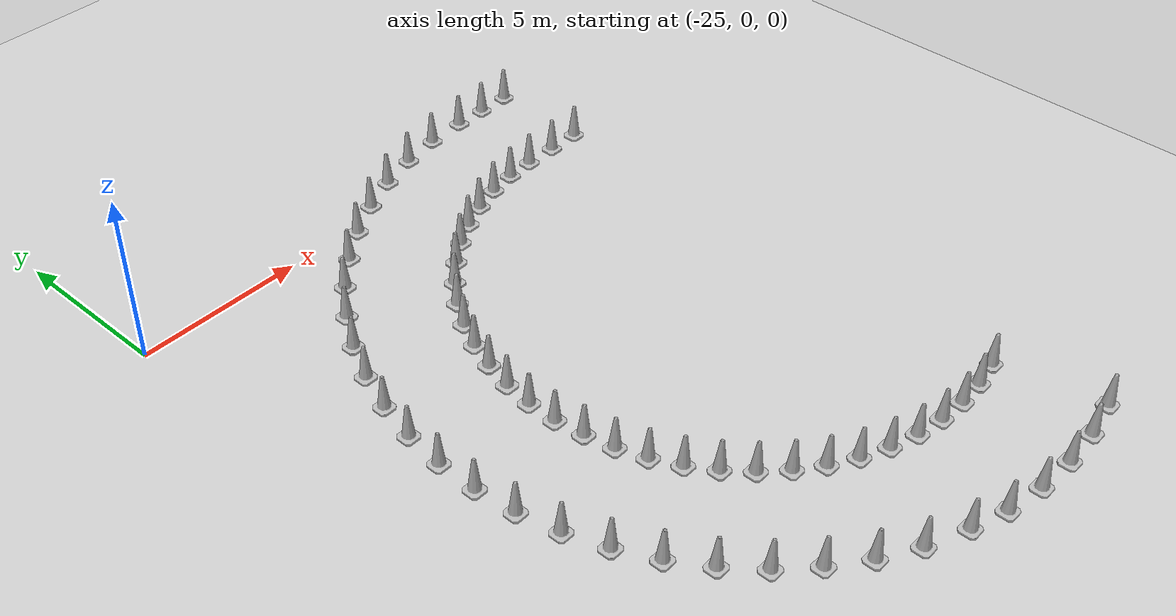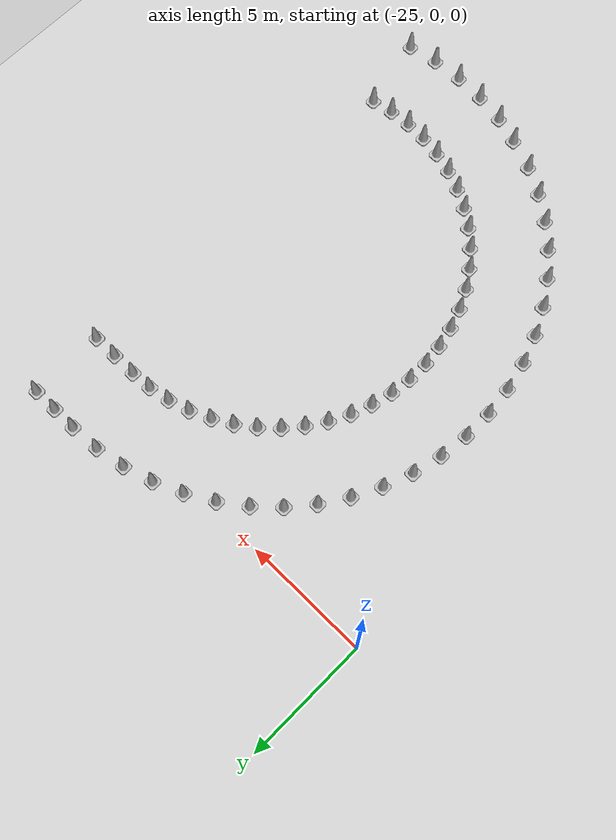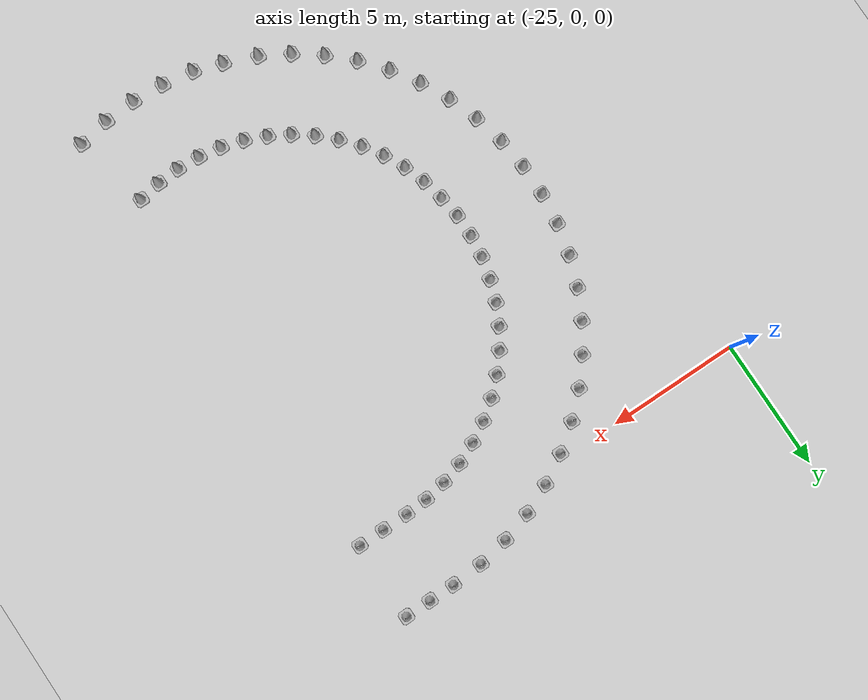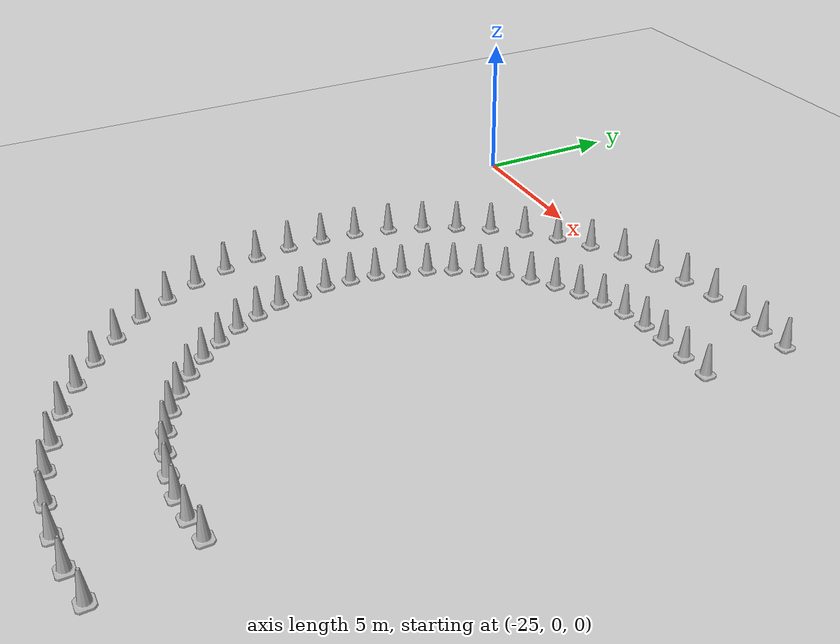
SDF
<sdf version="1.7">
 <world name="default">
  <model name="ground_plane">
   <static>1</static>
   <link name="link">
    <collision name="collision">
     <geometry><plane><normal>0 0 1</normal><size>100 100</size></plane></geometry>
     <surface><friction><ode><mu>100</mu><mu2>50</mu2></ode></friction></surface>
    </collision>
    <visual name="visual">
     <cast_shadows>0</cast_shadows>
     <geometry><plane><normal>0 0 1</normal><size>100 100</size></plane></geometry>
     <material>
      <script><uri>file://media/materials/scripts/gazebo.material</uri><name>Gazebo/Grey</name></script>
     </material>
    </visual>
   </link>
  </model>
  <model name="Construction Cone_clone_40">
   <link name="link">
    <collision name="collision">
     <geometry>
      <mesh><scale>10 10 10</scale><uri>model://construction_cone/meshes/construction_cone.dae</uri></mesh>
     </geometry>
    </collision>
    <visual name="visual">
     <geometry>
      <mesh><scale>10 10 10</scale><uri>model://construction_cone/meshes/construction_cone.dae</uri></mesh>
     </geometry>
    </visual>
    <inertial>
     <inertia><ixx>1</ixx><ixy>0</ixy><ixz>0</ixz><iyy>1</iyy><iyz>0</iyz><izz>1</izz></inertia>
     <mass>1</mass>
    </inertial>
   </link>
   <pose>-14.57 -1.95 -0 0 -1e-06 0</pose>
  </model>
  <model name="Construction Cone_clone_42">
   <link name="link">
    <collision name="collision">
     <geometry>
      <mesh><scale>10 10 10</scale><uri>model://construction_cone/meshes/construction_cone.dae</uri></mesh>
     </geometry>
    </collision>
    <visual name="visual">
     <geometry>
      <mesh><scale>10 10 10</scale><uri>model://construction_cone/meshes/construction_cone.dae</uri></mesh>
     </geometry>
    </visual>
    <inertial>
     <inertia><ixx>1</ixx><ixy>0</ixy><ixz>0</ixz><iyy>1</iyy><iyz>0</iyz><izz>1</izz></inertia>
     <mass>1</mass>
    </inertial>
   </link>
   <pose>-17.46 -3.85 -0 -0 -0 -0</pose>
  </model>
  <model name="Construction Cone_clone_43">
   <link name="link">
    <collision name="collision">
     <geometry>
      <mesh><scale>10 10 10</scale><uri>model://construction_cone/meshes/construction_cone.dae</uri></mesh>
     </geometry>
    </collision>
    <visual name="visual">
     <geometry>
      <mesh><scale>10 10 10</scale><uri>model://construction_cone/meshes/construction_cone.dae</uri></mesh>
     </geometry>
    </visual>
    <inertial>
     <inertia><ixx>1</ixx><ixy>0</ixy><ixz>0</ixz><iyy>1</iyy><iyz>0</iyz><izz>1</izz></inertia>
     <mass>1</mass>
    </inertial>
   </link>
   <pose>-16.12 -2.73 -0 0 -1e-06 0</pose>
  </model>
  <model name="Construction Cone_clone_44">
   <link name="link">
    <collision name="collision">
     <geometry>
      <mesh><scale>10 10 10</scale><uri>model://construction_cone/meshes/construction_cone.dae</uri></mesh>
     </geometry>
    </collision>
    <visual name="visual">
     <geometry>
      <mesh><scale>10 10 10</scale><uri>model://construction_cone/meshes/construction_cone.dae</uri></mesh>
     </geometry>
    </visual>
    <inertial>
     <inertia><ixx>1</ixx><ixy>0</ixy><ixz>0</ixz><iyy>1</iyy><iyz>0</iyz><izz>1</izz></inertia>
     <mass>1</mass>
    </inertial>
   </link>
   <pose>-18.5 -5.25 -0 -0 -0 -0</pose>
  </model>
  <model name="Construction Cone_clone_45">
   <link name="link">
    <collision name="collision">
     <geometry>
      <mesh><scale>10 10 10</scale><uri>model://construction_cone/meshes/construction_cone.dae</uri></mesh>
     </geometry>
    </collision>
    <visual name="visual">
     <geometry>
      <mesh><scale>10 10 10</scale><uri>model://construction_cone/meshes/construction_cone.dae</uri></mesh>
     </geometry>
    </visual>
    <inertial>
     <inertia><ixx>1</ixx><ixy>0</ixy><ixz>0</ixz><iyy>1</iyy><iyz>0</iyz><izz>1</izz></inertia>
     <mass>1</mass>
    </inertial>
   </link>
   <pose>-18.02 -4.52 -0 -0 -0 -0</pose>
  </model>
  <model name="Construction Cone_clone_46">
   <link name="link">
    <collision name="collision">
     <geometry>
      <mesh><scale>10 10 10</scale><uri>model://construction_cone/meshes/construction_cone.dae</uri></mesh>
     </geometry>
    </collision>
    <visual name="visual">
     <geometry>
      <mesh><scale>10 10 10</scale><uri>model://construction_cone/meshes/construction_cone.dae</uri></mesh>
     </geometry>
    </visual>
    <inertial>
     <inertia><ixx>1</ixx><ixy>0</ixy><ixz>0</ixz><iyy>1</iyy><iyz>0</iyz><izz>1</izz></inertia>
     <mass>1</mass>
    </inertial>
   </link>
   <pose>-15.37 -2.3 -0 -0 -0 -0</pose>
  </model>
  <model name="Construction Cone_clone_47">
   <link name="link">
    <collision name="collision">
     <geometry>
      <mesh><scale>10 10 10</scale><uri>model://construction_cone/meshes/construction_cone.dae</uri></mesh>
     </geometry>
    </collision>
    <visual name="visual">
     <geometry>
      <mesh><scale>10 10 10</scale><uri>model://construction_cone/meshes/construction_cone.dae</uri></mesh>
     </geometry>
    </visual>
    <inertial>
     <inertia><ixx>1</ixx><ixy>0</ixy><ixz>0</ixz><iyy>1</iyy><iyz>0</iyz><izz>1</izz></inertia>
     <mass>1</mass>
    </inertial>
   </link>
   <pose>-13.73 -1.7 -0 -0 -0 -0</pose>
  </model>
  <model name="Construction Cone_clone_48">
   <link name="link">
    <collision name="collision">
     <geometry>
      <mesh><scale>10 10 10</scale><uri>model://construction_cone/meshes/construction_cone.dae</uri></mesh>
     </geometry>
    </collision>
    <visual name="visual">
     <geometry>
      <mesh><scale>10 10 10</scale><uri>model://construction_cone/meshes/construction_cone.dae</uri></mesh>
     </geometry>
    </visual>
    <inertial>
     <inertia><ixx>1</ixx><ixy>0</ixy><ixz>0</ixz><iyy>1</iyy><iyz>0</iyz><izz>1</izz></inertia>
     <mass>1</mass>
    </inertial>
   </link>
   <pose>-12.8698 -1.5497 -0 -0 -0 -0</pose>
  </model>
  <model name="Construction Cone_clone_49">
   <link name="link">
    <collision name="collision">
     <geometry>
      <mesh><scale>10 10 10</scale><uri>model://construction_cone/meshes/construction_cone.dae</uri></mesh>
     </geometry>
    </collision>
    <visual name="visual">
     <geometry>
      <mesh><scale>10 10 10</scale><uri>model://construction_cone/meshes/construction_cone.dae</uri></mesh>
     </geometry>
    </visual>
    <inertial>
     <inertia><ixx>1</ixx><ixy>0</ixy><ixz>0</ixz><iyy>1</iyy><iyz>0</iyz><izz>1</izz></inertia>
     <mass>1</mass>
    </inertial>
   </link>
   <pose>-12 -1.5 -9e-06 1e-06 -0 0</pose>
  </model>
  <model name="Construction Cone_clone_51">
   <link name="link">
    <collision name="collision">
     <geometry>
      <mesh><scale>10 10 10</scale><uri>model://construction_cone/meshes/construction_cone.dae</uri></mesh>
     </geometry>
    </collision>
    <visual name="visual">
     <geometry>
      <mesh><scale>10 10 10</scale><uri>model://construction_cone/meshes/construction_cone.dae</uri></mesh>
     </geometry>
    </visual>
    <inertial>
     <inertia><ixx>1</ixx><ixy>0</ixy><ixz>0</ixz><iyy>1</iyy><iyz>0</iyz><izz>1</izz></inertia>
     <mass>1</mass>
    </inertial>
   </link>
   <pose>-16.82 -3.25 -0 -0 -0 -0</pose>
  </model>
  <model name="Construction Cone_clone_52">
   <link name="link">
    <collision name="collision">
     <geometry>
      <mesh><scale>10 10 10</scale><uri>model://construction_cone/meshes/construction_cone.dae</uri></mesh>
     </geometry>
    </collision>
    <visual name="visual">
     <geometry>
      <mesh><scale>10 10 10</scale><uri>model://construction_cone/meshes/construction_cone.dae</uri></mesh>
     </geometry>
    </visual>
    <inertial>
     <inertia><ixx>1</ixx><ixy>0</ixy><ixz>0</ixz><iyy>1</iyy><iyz>0</iyz><izz>1</izz></inertia>
     <mass>1</mass>
    </inertial>
   </link>
   <pose>-19.18 -6.85 -0 -0 -0 -0</pose>
  </model>
  <model name="Construction Cone_clone_53">
   <link name="link">
    <collision name="collision">
     <geometry>
      <mesh><scale>10 10 10</scale><uri>model://construction_cone/meshes/construction_cone.dae</uri></mesh>
     </geometry>
    </collision>
    <visual name="visual">
     <geometry>
      <mesh><scale>10 10 10</scale><uri>model://construction_cone/meshes/construction_cone.dae</uri></mesh>
     </geometry>
    </visual>
    <inertial>
     <inertia><ixx>1</ixx><ixy>0</ixy><ixz>0</ixz><iyy>1</iyy><iyz>0</iyz><izz>1</izz></inertia>
     <mass>1</mass>
    </inertial>
   </link>
   <pose>-19.39 -7.7 -0 -0 -0 -0</pose>
  </model>
  <model name="Construction Cone_clone_54">
   <link name="link">
    <collision name="collision">
     <geometry>
      <mesh><scale>10 10 10</scale><uri>model://construction_cone/meshes/construction_cone.dae</uri></mesh>
     </geometry>
    </collision>
    <visual name="visual">
     <geometry>
      <mesh><scale>10 10 10</scale><uri>model://construction_cone/meshes/construction_cone.dae</uri></mesh>
     </geometry>
    </visual>
    <inertial>
     <inertia><ixx>1</ixx><ixy>0</ixy><ixz>0</ixz><iyy>1</iyy><iyz>0</iyz><izz>1</izz></inertia>
     <mass>1</mass>
    </inertial>
   </link>
   <pose>-18.89 -6.03 -0 -0 -0 -0</pose>
  </model>
  <model name="Construction Cone_clone_55">
   <link name="link">
    <collision name="collision">
     <geometry>
      <mesh><scale>10 10 10</scale><uri>model://construction_cone/meshes/construction_cone.dae</uri></mesh>
     </geometry>
    </collision>
    <visual name="visual">
     <geometry>
      <mesh><scale>10 10 10</scale><uri>model://construction_cone/meshes/construction_cone.dae</uri></mesh>
     </geometry>
    </visual>
    <inertial>
     <inertia><ixx>1</ixx><ixy>0</ixy><ixz>0</ixz><iyy>1</iyy><iyz>0</iyz><izz>1</izz></inertia>
     <mass>1</mass>
    </inertial>
   </link>
   <pose>-19.369 -10.3 -0 -0 -0 -0</pose>
  </model>
  <model name="Construction Cone_clone_56">
   <link name="link">
    <collision name="collision">
     <geometry>
      <mesh><scale>10 10 10</scale><uri>model://construction_cone/meshes/construction_cone.dae</uri></mesh>
     </geometry>
    </collision>
    <visual name="visual">
     <geometry>
      <mesh><scale>10 10 10</scale><uri>model://construction_cone/meshes/construction_cone.dae</uri></mesh>
     </geometry>
    </visual>
    <inertial>
     <inertia><ixx>1</ixx><ixy>0</ixy><ixz>0</ixz><iyy>1</iyy><iyz>0</iyz><izz>1</izz></inertia>
     <mass>1</mass>
    </inertial>
   </link>
   <pose>-18.5 -12.75 -0 -0 -0 -0</pose>
  </model>
  <model name="Construction Cone_clone_57">
   <link name="link">
    <collision name="collision">
     <geometry>
      <mesh><scale>10 10 10</scale><uri>model://construction_cone/meshes/construction_cone.dae</uri></mesh>
     </geometry>
    </collision>
    <visual name="visual">
     <geometry>
      <mesh><scale>10 10 10</scale><uri>model://construction_cone/meshes/construction_cone.dae</uri></mesh>
     </geometry>
    </visual>
    <inertial>
     <inertia><ixx>1</ixx><ixy>0</ixy><ixz>0</ixz><iyy>1</iyy><iyz>0</iyz><izz>1</izz></inertia>
     <mass>1</mass>
    </inertial>
   </link>
   <pose>-18.02 -13.48 -0 -0 -0 -0</pose>
  </model>
  <model name="Construction Cone_clone_58">
   <link name="link">
    <collision name="collision">
     <geometry>
      <mesh><scale>10 10 10</scale><uri>model://construction_cone/meshes/construction_cone.dae</uri></mesh>
     </geometry>
    </collision>
    <visual name="visual">
     <geometry>
      <mesh><scale>10 10 10</scale><uri>model://construction_cone/meshes/construction_cone.dae</uri></mesh>
     </geometry>
    </visual>
    <inertial>
     <inertia><ixx>1</ixx><ixy>0</ixy><ixz>0</ixz><iyy>1</iyy><iyz>0</iyz><izz>1</izz></inertia>
     <mass>1</mass>
    </inertial>
   </link>
   <pose>-15.37 -15.7 -0 -0 -0 -0</pose>
  </model>
  <model name="Construction Cone_clone_59">
   <link name="link">
    <collision name="collision">
     <geometry>
      <mesh><scale>10 10 10</scale><uri>model://construction_cone/meshes/construction_cone.dae</uri></mesh>
     </geometry>
    </collision>
    <visual name="visual">
     <geometry>
      <mesh><scale>10 10 10</scale><uri>model://construction_cone/meshes/construction_cone.dae</uri></mesh>
     </geometry>
    </visual>
    <inertial>
     <inertia><ixx>1</ixx><ixy>0</ixy><ixz>0</ixz><iyy>1</iyy><iyz>0</iyz><izz>1</izz></inertia>
     <mass>1</mass>
    </inertial>
   </link>
   <pose>-12 -16.5 -0 0 -1e-06 0</pose>
  </model>
  <model name="Construction Cone_clone_60">
   <link name="link">
    <collision name="collision">
     <geometry>
      <mesh><scale>10 10 10</scale><uri>model://construction_cone/meshes/construction_cone.dae</uri></mesh>
     </geometry>
    </collision>
    <visual name="visual">
     <geometry>
      <mesh><scale>10 10 10</scale><uri>model://construction_cone/meshes/construction_cone.dae</uri></mesh>
     </geometry>
    </visual>
    <inertial>
     <inertia><ixx>1</ixx><ixy>0</ixy><ixz>0</ixz><iyy>1</iyy><iyz>0</iyz><izz>1</izz></inertia>
     <mass>1</mass>
    </inertial>
   </link>
   <pose>-10.27 -16.3 -0 -0 -0 -0</pose>
  </model>
  <model name="Construction Cone_clone_64">
   <link name="link">
    <collision name="collision">
     <geometry>
      <mesh><scale>10 10 10</scale><uri>model://construction_cone/meshes/construction_cone.dae</uri></mesh>
     </geometry>
    </collision>
    <visual name="visual">
     <geometry>
      <mesh><scale>10 10 10</scale><uri>model://construction_cone/meshes/construction_cone.dae</uri></mesh>
     </geometry>
    </visual>
    <inertial>
     <inertia><ixx>1</ixx><ixy>0</ixy><ixz>0</ixz><iyy>1</iyy><iyz>0</iyz><izz>1</izz></inertia>
     <mass>1</mass>
    </inertial>
   </link>
   <pose>-19.49 -8.56 -0 -0 -0 -0</pose>
  </model>
  <model name="Construction Cone_clone_65">
   <link name="link">
    <collision name="collision">
     <geometry>
      <mesh><scale>10 10 10</scale><uri>model://construction_cone/meshes/construction_cone.dae</uri></mesh>
     </geometry>
    </collision>
    <visual name="visual">
     <geometry>
      <mesh><scale>10 10 10</scale><uri>model://construction_cone/meshes/construction_cone.dae</uri></mesh>
     </geometry>
    </visual>
    <inertial>
     <inertia><ixx>1</ixx><ixy>0</ixy><ixz>0</ixz><iyy>1</iyy><iyz>0</iyz><izz>1</izz></inertia>
     <mass>1</mass>
    </inertial>
   </link>
   <pose>-19.49 -9.44 -0 -0 -0 -0</pose>
  </model>
  <model name="Construction Cone_clone_66">
   <link name="link">
    <collision name="collision">
     <geometry>
      <mesh><scale>10 10 10</scale><uri>model://construction_cone/meshes/construction_cone.dae</uri></mesh>
     </geometry>
    </collision>
    <visual name="visual">
     <geometry>
      <mesh><scale>10 10 10</scale><uri>model://construction_cone/meshes/construction_cone.dae</uri></mesh>
     </geometry>
    </visual>
    <inertial>
     <inertia><ixx>1</ixx><ixy>0</ixy><ixz>0</ixz><iyy>1</iyy><iyz>0</iyz><izz>1</izz></inertia>
     <mass>1</mass>
    </inertial>
   </link>
   <pose>-11.13 -16.45 -0 -0 -0 -0</pose>
  </model>
  <model name="Construction Cone_clone_67">
   <link name="link">
    <collision name="collision">
     <geometry>
      <mesh><scale>10 10 10</scale><uri>model://construction_cone/meshes/construction_cone.dae</uri></mesh>
     </geometry>
    </collision>
    <visual name="visual">
     <geometry>
      <mesh><scale>10 10 10</scale><uri>model://construction_cone/meshes/construction_cone.dae</uri></mesh>
     </geometry>
    </visual>
    <inertial>
     <inertia><ixx>1</ixx><ixy>0</ixy><ixz>0</ixz><iyy>1</iyy><iyz>0</iyz><izz>1</izz></inertia>
     <mass>1</mass>
    </inertial>
   </link>
   <pose>-12.87 -16.45 -1e-05 0 -0 0</pose>
  </model>
  <model name="Construction Cone_clone_68">
   <link name="link">
    <collision name="collision">
     <geometry>
      <mesh><scale>10 10 10</scale><uri>model://construction_cone/meshes/construction_cone.dae</uri></mesh>
     </geometry>
    </collision>
    <visual name="visual">
     <geometry>
      <mesh><scale>10 10 10</scale><uri>model://construction_cone/meshes/construction_cone.dae</uri></mesh>
     </geometry>
    </visual>
    <inertial>
     <inertia><ixx>1</ixx><ixy>0</ixy><ixz>0</ixz><iyy>1</iyy><iyz>0</iyz><izz>1</izz></inertia>
     <mass>1</mass>
    </inertial>
   </link>
   <pose>-14.57 -16.05 -0 -0 -0 -0</pose>
  </model>
  <model name="Construction Cone_clone_69">
   <link name="link">
    <collision name="collision">
     <geometry>
      <mesh><scale>10 10 10</scale><uri>model://construction_cone/meshes/construction_cone.dae</uri></mesh>
     </geometry>
    </collision>
    <visual name="visual">
     <geometry>
      <mesh><scale>10 10 10</scale><uri>model://construction_cone/meshes/construction_cone.dae</uri></mesh>
     </geometry>
    </visual>
    <inertial>
     <inertia><ixx>1</ixx><ixy>0</ixy><ixz>0</ixz><iyy>1</iyy><iyz>0</iyz><izz>1</izz></inertia>
     <mass>1</mass>
    </inertial>
   </link>
   <pose>-16.82 -14.75 -0 -0 -0 -0</pose>
  </model>
  <model name="Construction Cone_clone_70">
   <link name="link">
    <collision name="collision">
     <geometry>
      <mesh><scale>10 10 10</scale><uri>model://construction_cone/meshes/construction_cone.dae</uri></mesh>
     </geometry>
    </collision>
    <visual name="visual">
     <geometry>
      <mesh><scale>10 10 10</scale><uri>model://construction_cone/meshes/construction_cone.dae</uri></mesh>
     </geometry>
    </visual>
    <inertial>
     <inertia><ixx>1</ixx><ixy>0</ixy><ixz>0</ixz><iyy>1</iyy><iyz>0</iyz><izz>1</izz></inertia>
     <mass>1</mass>
    </inertial>
   </link>
   <pose>-17.46 -14.15 -0 -0 -0 -0</pose>
  </model>
  <model name="Construction Cone_clone_71">
   <link name="link">
    <collision name="collision">
     <geometry>
      <mesh><scale>10 10 10</scale><uri>model://construction_cone/meshes/construction_cone.dae</uri></mesh>
     </geometry>
    </collision>
    <visual name="visual">
     <geometry>
      <mesh><scale>10 10 10</scale><uri>model://construction_cone/meshes/construction_cone.dae</uri></mesh>
     </geometry>
    </visual>
    <inertial>
     <inertia><ixx>1</ixx><ixy>0</ixy><ixz>0</ixz><iyy>1</iyy><iyz>0</iyz><izz>1</izz></inertia>
     <mass>1</mass>
    </inertial>
   </link>
   <pose>-18.89 -11.97 -0 -0 -0 -0</pose>
  </model>
  <model name="Construction Cone_clone_72">
   <link name="link">
    <collision name="collision">
     <geometry>
      <mesh><scale>10 10 10</scale><uri>model://construction_cone/meshes/construction_cone.dae</uri></mesh>
     </geometry>
    </collision>
    <visual name="visual">
     <geometry>
      <mesh><scale>10 10 10</scale><uri>model://construction_cone/meshes/construction_cone.dae</uri></mesh>
     </geometry>
    </visual>
    <inertial>
     <inertia><ixx>1</ixx><ixy>0</ixy><ixz>0</ixz><iyy>1</iyy><iyz>0</iyz><izz>1</izz></inertia>
     <mass>1</mass>
    </inertial>
   </link>
   <pose>-19.18 -11.15 -0 -0 -0 -0</pose>
  </model>
  <model name="Construction Cone_clone_73">
   <link name="link">
    <collision name="collision">
     <geometry>
      <mesh><scale>10 10 10</scale><uri>model://construction_cone/meshes/construction_cone.dae</uri></mesh>
     </geometry>
    </collision>
    <visual name="visual">
     <geometry>
      <mesh><scale>10 10 10</scale><uri>model://construction_cone/meshes/construction_cone.dae</uri></mesh>
     </geometry>
    </visual>
    <inertial>
     <inertia><ixx>1</ixx><ixy>0</ixy><ixz>0</ixz><iyy>1</iyy><iyz>0</iyz><izz>1</izz></inertia>
     <mass>1</mass>
    </inertial>
   </link>
   <pose>-16.12 -15.27 -0 -0 -0 -0</pose>
  </model>
  <model name="Construction Cone_clone_74">
   <link name="link">
    <collision name="collision">
     <geometry>
      <mesh><scale>10 10 10</scale><uri>model://construction_cone/meshes/construction_cone.dae</uri></mesh>
     </geometry>
    </collision>
    <visual name="visual">
     <geometry>
      <mesh><scale>10 10 10</scale><uri>model://construction_cone/meshes/construction_cone.dae</uri></mesh>
     </geometry>
    </visual>
    <inertial>
     <inertia><ixx>1</ixx><ixy>0</ixy><ixz>0</ixz><iyy>1</iyy><iyz>0</iyz><izz>1</izz></inertia>
     <mass>1</mass>
    </inertial>
   </link>
   <pose>-13.73 -16.3 -0 -0 -0 -0</pose>
  </model>
  <model name="Construction Cone_clone_81">
   <link name="link">
    <collision name="collision">
     <geometry>
      <mesh><scale>10 10 10</scale><uri>model://construction_cone/meshes/construction_cone.dae</uri></mesh>
     </geometry>
    </collision>
    <visual name="visual">
     <geometry>
      <mesh><scale>10 10 10</scale><uri>model://construction_cone/meshes/construction_cone.dae</uri></mesh>
     </geometry>
    </visual>
    <inertial>
     <inertia><ixx>1</ixx><ixy>0</ixy><ixz>0</ixz><iyy>1</iyy><iyz>0</iyz><izz>1</izz></inertia>
     <mass>1</mass>
    </inertial>
   </link>
   <pose>-10 -1.5 -0 -0 -0 -0</pose>
  </model>
  <model name="Construction Cone_clone_63">
   <link name="link">
    <collision name="collision">
     <geometry>
      <mesh><scale>10 10 10</scale><uri>model://construction_cone/meshes/construction_cone.dae</uri></mesh>
     </geometry>
    </collision>
    <visual name="visual">
     <geometry>
      <mesh><scale>10 10 10</scale><uri>model://construction_cone/meshes/construction_cone.dae</uri></mesh>
     </geometry>
    </visual>
    <inertial>
     <inertia><ixx>1</ixx><ixy>0</ixy><ixz>0</ixz><iyy>1</iyy><iyz>0</iyz><izz>1</izz></inertia>
     <mass>1</mass>
    </inertial>
   </link>
   <pose>-11 -1.5 -9e-06 1e-06 -0 0</pose>
  </model>
  <model name="Construction Cone_clone_125">
   <link name="link">
    <collision name="collision">
     <geometry>
      <mesh><scale>10 10 10</scale><uri>model://construction_cone/meshes/construction_cone.dae</uri></mesh>
     </geometry>
    </collision>
    <visual name="visual">
     <geometry>
      <mesh><scale>10 10 10</scale><uri>model://construction_cone/meshes/construction_cone.dae</uri></mesh>
     </geometry>
    </visual>
    <inertial>
     <inertia><ixx>1</ixx><ixy>0</ixy><ixz>0</ixz><iyy>1</iyy><iyz>0</iyz><izz>1</izz></inertia>
     <mass>1</mass>
    </inertial>
   </link>
   <pose>-14.42 1.22 -0 -0 -0 -0</pose>
  </model>
  <model name="Construction Cone_clone_126">
   <link name="link">
    <collision name="collision">
     <geometry>
      <mesh><scale>10 10 10</scale><uri>model://construction_cone/meshes/construction_cone.dae</uri></mesh>
     </geometry>
    </collision>
    <visual name="visual">
     <geometry>
      <mesh><scale>10 10 10</scale><uri>model://construction_cone/meshes/construction_cone.dae</uri></mesh>
     </geometry>
    </visual>
    <inertial>
     <inertia><ixx>1</ixx><ixy>0</ixy><ixz>0</ixz><iyy>1</iyy><iyz>0</iyz><izz>1</izz></inertia>
     <mass>1</mass>
    </inertial>
   </link>
   <pose>-13.22 1.43 -0 -0 -0 -0</pose>
  </model>
  <model name="Construction Cone_clone_131">
   <link name="link">
    <collision name="collision">
     <geometry>
      <mesh><scale>10 10 10</scale><uri>model://construction_cone/meshes/construction_cone.dae</uri></mesh>
     </geometry>
    </collision>
    <visual name="visual">
     <geometry>
      <mesh><scale>10 10 10</scale><uri>model://construction_cone/meshes/construction_cone.dae</uri></mesh>
     </geometry>
    </visual>
    <inertial>
     <inertia><ixx>1</ixx><ixy>0</ixy><ixz>0</ixz><iyy>1</iyy><iyz>0</iyz><izz>1</izz></inertia>
     <mass>1</mass>
    </inertial>
   </link>
   <pose>-16.71 0.38 -0 0 -1e-06 0</pose>
  </model>
  <model name="Construction Cone_clone_132">
   <link name="link">
    <collision name="collision">
     <geometry>
      <mesh><scale>10 10 10</scale><uri>model://construction_cone/meshes/construction_cone.dae</uri></mesh>
     </geometry>
    </collision>
    <visual name="visual">
     <geometry>
      <mesh><scale>10 10 10</scale><uri>model://construction_cone/meshes/construction_cone.dae</uri></mesh>
     </geometry>
    </visual>
    <inertial>
     <inertia><ixx>1</ixx><ixy>0</ixy><ixz>0</ixz><iyy>1</iyy><iyz>0</iyz><izz>1</izz></inertia>
     <mass>1</mass>
    </inertial>
   </link>
   <pose>-15.59 0.87 -0 0 -1e-06 0</pose>
  </model>
  <model name="Construction Cone_clone_138">
   <link name="link">
    <collision name="collision">
     <geometry>
      <mesh><scale>10 10 10</scale><uri>model://construction_cone/meshes/construction_cone.dae</uri></mesh>
     </geometry>
    </collision>
    <visual name="visual">
     <geometry>
      <mesh><scale>10 10 10</scale><uri>model://construction_cone/meshes/construction_cone.dae</uri></mesh>
     </geometry>
    </visual>
    <inertial>
     <inertia><ixx>1</ixx><ixy>0</ixy><ixz>0</ixz><iyy>1</iyy><iyz>0</iyz><izz>1</izz></inertia>
     <mass>1</mass>
    </inertial>
   </link>
   <pose>-17.77 -0.23 -0 -0 -0 -0</pose>
  </model>
  <model name="Construction Cone_clone_139">
   <link name="link">
    <collision name="collision">
     <geometry>
      <mesh><scale>10 10 10</scale><uri>model://construction_cone/meshes/construction_cone.dae</uri></mesh>
     </geometry>
    </collision>
    <visual name="visual">
     <geometry>
      <mesh><scale>10 10 10</scale><uri>model://construction_cone/meshes/construction_cone.dae</uri></mesh>
     </geometry>
    </visual>
    <inertial>
     <inertia><ixx>1</ixx><ixy>0</ixy><ixz>0</ixz><iyy>1</iyy><iyz>0</iyz><izz>1</izz></inertia>
     <mass>1</mass>
    </inertial>
   </link>
   <pose>-12 1.5 -0 -0 -0 -0</pose>
  </model>
  <model name="Construction Cone_clone_93">
   <link name="link">
    <collision name="collision">
     <geometry>
      <mesh><scale>10 10 10</scale><uri>model://construction_cone/meshes/construction_cone.dae</uri></mesh>
     </geometry>
    </collision>
    <visual name="visual">
     <geometry>
      <mesh><scale>10 10 10</scale><uri>model://construction_cone/meshes/construction_cone.dae</uri></mesh>
     </geometry>
    </visual>
    <inertial>
     <inertia><ixx>1</ixx><ixy>0</ixy><ixz>0</ixz><iyy>1</iyy><iyz>0</iyz><izz>1</izz></inertia>
     <mass>1</mass>
    </inertial>
   </link>
   <pose>-18.75 -0.96 -0 -0 -0 -0</pose>
  </model>
  <model name="Construction Cone_clone_143">
   <link name="link">
    <collision name="collision">
     <geometry>
      <mesh><scale>10 10 10</scale><uri>model://construction_cone/meshes/construction_cone.dae</uri></mesh>
     </geometry>
    </collision>
    <visual name="visual">
     <geometry>
      <mesh><scale>10 10 10</scale><uri>model://construction_cone/meshes/construction_cone.dae</uri></mesh>
     </geometry>
    </visual>
    <inertial>
     <inertia><ixx>1</ixx><ixy>0</ixy><ixz>0</ixz><iyy>1</iyy><iyz>0</iyz><izz>1</izz></inertia>
     <mass>1</mass>
    </inertial>
   </link>
   <pose>-19.64 -1.79 -0 -0 -0 -0</pose>
  </model>
  <model name="Construction Cone_clone_144">
   <link name="link">
    <collision name="collision">
     <geometry>
      <mesh><scale>10 10 10</scale><uri>model://construction_cone/meshes/construction_cone.dae</uri></mesh>
     </geometry>
    </collision>
    <visual name="visual">
     <geometry>
      <mesh><scale>10 10 10</scale><uri>model://construction_cone/meshes/construction_cone.dae</uri></mesh>
     </geometry>
    </visual>
    <inertial>
     <inertia><ixx>1</ixx><ixy>0</ixy><ixz>0</ixz><iyy>1</iyy><iyz>0</iyz><izz>1</izz></inertia>
     <mass>1</mass>
    </inertial>
   </link>
   <pose>-20.42 -2.73 -0 -0 -0 -0</pose>
  </model>
  <model name="Construction Cone_clone_145">
   <link name="link">
    <collision name="collision">
     <geometry>
      <mesh><scale>10 10 10</scale><uri>model://construction_cone/meshes/construction_cone.dae</uri></mesh>
     </geometry>
    </collision>
    <visual name="visual">
     <geometry>
      <mesh><scale>10 10 10</scale><uri>model://construction_cone/meshes/construction_cone.dae</uri></mesh>
     </geometry>
    </visual>
    <inertial>
     <inertia><ixx>1</ixx><ixy>0</ixy><ixz>0</ixz><iyy>1</iyy><iyz>0</iyz><izz>1</izz></inertia>
     <mass>1</mass>
    </inertial>
   </link>
   <pose>-21.09 -3.75 -0 -0 -0 -0</pose>
  </model>
  <model name="Construction Cone_clone_146">
   <link name="link">
    <collision name="collision">
     <geometry>
      <mesh><scale>10 10 10</scale><uri>model://construction_cone/meshes/construction_cone.dae</uri></mesh>
     </geometry>
    </collision>
    <visual name="visual">
     <geometry>
      <mesh><scale>10 10 10</scale><uri>model://construction_cone/meshes/construction_cone.dae</uri></mesh>
     </geometry>
    </visual>
    <inertial>
     <inertia><ixx>1</ixx><ixy>0</ixy><ixz>0</ixz><iyy>1</iyy><iyz>0</iyz><izz>1</izz></inertia>
     <mass>1</mass>
    </inertial>
   </link>
   <pose>-21.64 -4.84 -0 -0 -0 -0</pose>
  </model>
  <model name="Construction Cone_clone_147">
   <link name="link">
    <collision name="collision">
     <geometry>
      <mesh><scale>10 10 10</scale><uri>model://construction_cone/meshes/construction_cone.dae</uri></mesh>
     </geometry>
    </collision>
    <visual name="visual">
     <geometry>
      <mesh><scale>10 10 10</scale><uri>model://construction_cone/meshes/construction_cone.dae</uri></mesh>
     </geometry>
    </visual>
    <inertial>
     <inertia><ixx>1</ixx><ixy>0</ixy><ixz>0</ixz><iyy>1</iyy><iyz>0</iyz><izz>1</izz></inertia>
     <mass>1</mass>
    </inertial>
   </link>
   <pose>-22.06 -5.99 -1e-05 0 -0 0</pose>
  </model>
  <model name="Construction Cone_clone_148">
   <link name="link">
    <collision name="collision">
     <geometry>
      <mesh><scale>10 10 10</scale><uri>model://construction_cone/meshes/construction_cone.dae</uri></mesh>
     </geometry>
    </collision>
    <visual name="visual">
     <geometry>
      <mesh><scale>10 10 10</scale><uri>model://construction_cone/meshes/construction_cone.dae</uri></mesh>
     </geometry>
    </visual>
    <inertial>
     <inertia><ixx>1</ixx><ixy>0</ixy><ixz>0</ixz><iyy>1</iyy><iyz>0</iyz><izz>1</izz></inertia>
     <mass>1</mass>
    </inertial>
   </link>
   <pose>-22.48 -8.39 -0 0 -1e-06 0</pose>
  </model>
  <model name="Construction Cone_clone_149">
   <link name="link">
    <collision name="collision">
     <geometry>
      <mesh><scale>10 10 10</scale><uri>model://construction_cone/meshes/construction_cone.dae</uri></mesh>
     </geometry>
    </collision>
    <visual name="visual">
     <geometry>
      <mesh><scale>10 10 10</scale><uri>model://construction_cone/meshes/construction_cone.dae</uri></mesh>
     </geometry>
    </visual>
    <inertial>
     <inertia><ixx>1</ixx><ixy>0</ixy><ixz>0</ixz><iyy>1</iyy><iyz>0</iyz><izz>1</izz></inertia>
     <mass>1</mass>
    </inertial>
   </link>
   <pose>-22.3399 -7.17992 -0 0 -0 0.003198</pose>
  </model>
  <model name="Construction Cone_clone_150">
   <link name="link">
    <collision name="collision">
     <geometry>
      <mesh><scale>10 10 10</scale><uri>model://construction_cone/meshes/construction_cone.dae</uri></mesh>
     </geometry>
    </collision>
    <visual name="visual">
     <geometry>
      <mesh><scale>10 10 10</scale><uri>model://construction_cone/meshes/construction_cone.dae</uri></mesh>
     </geometry>
    </visual>
    <inertial>
     <inertia><ixx>1</ixx><ixy>0</ixy><ixz>0</ixz><iyy>1</iyy><iyz>0</iyz><izz>1</izz></inertia>
     <mass>1</mass>
    </inertial>
   </link>
   <pose>-22.48 -9.61 -0 0 -1e-06 0</pose>
  </model>
  <model name="Construction Cone_clone_151">
   <link name="link">
    <collision name="collision">
     <geometry>
      <mesh><scale>10 10 10</scale><uri>model://construction_cone/meshes/construction_cone.dae</uri></mesh>
     </geometry>
    </collision>
    <visual name="visual">
     <geometry>
      <mesh><scale>10 10 10</scale><uri>model://construction_cone/meshes/construction_cone.dae</uri></mesh>
     </geometry>
    </visual>
    <inertial>
     <inertia><ixx>1</ixx><ixy>0</ixy><ixz>0</ixz><iyy>1</iyy><iyz>0</iyz><izz>1</izz></inertia>
     <mass>1</mass>
    </inertial>
   </link>
   <pose>-22.34 -10.82 -0 -0 -0 -0</pose>
  </model>
  <model name="Construction Cone_clone_152">
   <link name="link">
    <collision name="collision">
     <geometry>
      <mesh><scale>10 10 10</scale><uri>model://construction_cone/meshes/construction_cone.dae</uri></mesh>
     </geometry>
    </collision>
    <visual name="visual">
     <geometry>
      <mesh><scale>10 10 10</scale><uri>model://construction_cone/meshes/construction_cone.dae</uri></mesh>
     </geometry>
    </visual>
    <inertial>
     <inertia><ixx>1</ixx><ixy>0</ixy><ixz>0</ixz><iyy>1</iyy><iyz>0</iyz><izz>1</izz></inertia>
     <mass>1</mass>
    </inertial>
   </link>
   <pose>-22.06 -12.01 -0 -0 -0 -0</pose>
  </model>
  <model name="Construction Cone_clone_153">
   <link name="link">
    <collision name="collision">
     <geometry>
      <mesh><scale>10 10 10</scale><uri>model://construction_cone/meshes/construction_cone.dae</uri></mesh>
     </geometry>
    </collision>
    <visual name="visual">
     <geometry>
      <mesh><scale>10 10 10</scale><uri>model://construction_cone/meshes/construction_cone.dae</uri></mesh>
     </geometry>
    </visual>
    <inertial>
     <inertia><ixx>1</ixx><ixy>0</ixy><ixz>0</ixz><iyy>1</iyy><iyz>0</iyz><izz>1</izz></inertia>
     <mass>1</mass>
    </inertial>
   </link>
   <pose>-21.64 -13.16 -0 -0 -0 -0</pose>
  </model>
  <model name="Construction Cone_clone_154">
   <link name="link">
    <collision name="collision">
     <geometry>
      <mesh><scale>10 10 10</scale><uri>model://construction_cone/meshes/construction_cone.dae</uri></mesh>
     </geometry>
    </collision>
    <visual name="visual">
     <geometry>
      <mesh><scale>10 10 10</scale><uri>model://construction_cone/meshes/construction_cone.dae</uri></mesh>
     </geometry>
    </visual>
    <inertial>
     <inertia><ixx>1</ixx><ixy>0</ixy><ixz>0</ixz><iyy>1</iyy><iyz>0</iyz><izz>1</izz></inertia>
     <mass>1</mass>
    </inertial>
   </link>
   <pose>-21.09 -14.25 -0 -0 -0 -0</pose>
  </model>
  <model name="Construction Cone_clone_155">
   <link name="link">
    <collision name="collision">
     <geometry>
      <mesh><scale>10 10 10</scale><uri>model://construction_cone/meshes/construction_cone.dae</uri></mesh>
     </geometry>
    </collision>
    <visual name="visual">
     <geometry>
      <mesh><scale>10 10 10</scale><uri>model://construction_cone/meshes/construction_cone.dae</uri></mesh>
     </geometry>
    </visual>
    <inertial>
     <inertia><ixx>1</ixx><ixy>0</ixy><ixz>0</ixz><iyy>1</iyy><iyz>0</iyz><izz>1</izz></inertia>
     <mass>1</mass>
    </inertial>
   </link>
   <pose>-20.42 -15.27 -0 -0 -0 -0</pose>
  </model>
  <model name="Construction Cone_clone_156">
   <link name="link">
    <collision name="collision">
     <geometry>
      <mesh><scale>10 10 10</scale><uri>model://construction_cone/meshes/construction_cone.dae</uri></mesh>
     </geometry>
    </collision>
    <visual name="visual">
     <geometry>
      <mesh><scale>10 10 10</scale><uri>model://construction_cone/meshes/construction_cone.dae</uri></mesh>
     </geometry>
    </visual>
    <inertial>
     <inertia><ixx>1</ixx><ixy>0</ixy><ixz>0</ixz><iyy>1</iyy><iyz>0</iyz><izz>1</izz></inertia>
     <mass>1</mass>
    </inertial>
   </link>
   <pose>-19.64 -16.21 -0 -0 -0 -0</pose>
  </model>
  <model name="Construction Cone_clone_157">
   <link name="link">
    <collision name="collision">
     <geometry>
      <mesh><scale>10 10 10</scale><uri>model://construction_cone/meshes/construction_cone.dae</uri></mesh>
     </geometry>
    </collision>
    <visual name="visual">
     <geometry>
      <mesh><scale>10 10 10</scale><uri>model://construction_cone/meshes/construction_cone.dae</uri></mesh>
     </geometry>
    </visual>
    <inertial>
     <inertia><ixx>1</ixx><ixy>0</ixy><ixz>0</ixz><iyy>1</iyy><iyz>0</iyz><izz>1</izz></inertia>
     <mass>1</mass>
    </inertial>
   </link>
   <pose>-18.75 -17.04 -0 -0 -0 -0</pose>
  </model>
  <model name="Construction Cone_clone_158">
   <link name="link">
    <collision name="collision">
     <geometry>
      <mesh><scale>10 10 10</scale><uri>model://construction_cone/meshes/construction_cone.dae</uri></mesh>
     </geometry>
    </collision>
    <visual name="visual">
     <geometry>
      <mesh><scale>10 10 10</scale><uri>model://construction_cone/meshes/construction_cone.dae</uri></mesh>
     </geometry>
    </visual>
    <inertial>
     <inertia><ixx>1</ixx><ixy>0</ixy><ixz>0</ixz><iyy>1</iyy><iyz>0</iyz><izz>1</izz></inertia>
     <mass>1</mass>
    </inertial>
   </link>
   <pose>-17.77 -17.77 -0 -0 -0 -0</pose>
  </model>
  <model name="Construction Cone_clone_159">
   <link name="link">
    <collision name="collision">
     <geometry>
      <mesh><scale>10 10 10</scale><uri>model://construction_cone/meshes/construction_cone.dae</uri></mesh>
     </geometry>
    </collision>
    <visual name="visual">
     <geometry>
      <mesh><scale>10 10 10</scale><uri>model://construction_cone/meshes/construction_cone.dae</uri></mesh>
     </geometry>
    </visual>
    <inertial>
     <inertia><ixx>1</ixx><ixy>0</ixy><ixz>0</ixz><iyy>1</iyy><iyz>0</iyz><izz>1</izz></inertia>
     <mass>1</mass>
    </inertial>
   </link>
   <pose>-16.71 -18.38 -0 -0 -0 -0</pose>
  </model>
  <model name="Construction Cone_clone_160">
   <link name="link">
    <collision name="collision">
     <geometry>
      <mesh><scale>10 10 10</scale><uri>model://construction_cone/meshes/construction_cone.dae</uri></mesh>
     </geometry>
    </collision>
    <visual name="visual">
     <geometry>
      <mesh><scale>10 10 10</scale><uri>model://construction_cone/meshes/construction_cone.dae</uri></mesh>
     </geometry>
    </visual>
    <inertial>
     <inertia><ixx>1</ixx><ixy>0</ixy><ixz>0</ixz><iyy>1</iyy><iyz>0</iyz><izz>1</izz></inertia>
     <mass>1</mass>
    </inertial>
   </link>
   <pose>-15.5 -18.87 -0 -0 -0 -0</pose>
  </model>
  <model name="Construction Cone_clone_161">
   <link name="link">
    <collision name="collision">
     <geometry>
      <mesh><scale>10 10 10</scale><uri>model://construction_cone/meshes/construction_cone.dae</uri></mesh>
     </geometry>
    </collision>
    <visual name="visual">
     <geometry>
      <mesh><scale>10 10 10</scale><uri>model://construction_cone/meshes/construction_cone.dae</uri></mesh>
     </geometry>
    </visual>
    <inertial>
     <inertia><ixx>1</ixx><ixy>0</ixy><ixz>0</ixz><iyy>1</iyy><iyz>0</iyz><izz>1</izz></inertia>
     <mass>1</mass>
    </inertial>
   </link>
   <pose>-14.42 -19.22 -0 0 -1e-06 0</pose>
  </model>
  <model name="Construction Cone_clone_162">
   <link name="link">
    <collision name="collision">
     <geometry>
      <mesh><scale>10 10 10</scale><uri>model://construction_cone/meshes/construction_cone.dae</uri></mesh>
     </geometry>
    </collision>
    <visual name="visual">
     <geometry>
      <mesh><scale>10 10 10</scale><uri>model://construction_cone/meshes/construction_cone.dae</uri></mesh>
     </geometry>
    </visual>
    <inertial>
     <inertia><ixx>1</ixx><ixy>0</ixy><ixz>0</ixz><iyy>1</iyy><iyz>0</iyz><izz>1</izz></inertia>
     <mass>1</mass>
    </inertial>
   </link>
   <pose>-10.78 -19.43 -0 -0 -0 -0</pose>
  </model>
  <model name="Construction Cone_clone_163">
   <link name="link">
    <collision name="collision">
     <geometry>
      <mesh><scale>10 10 10</scale><uri>model://construction_cone/meshes/construction_cone.dae</uri></mesh>
     </geometry>
    </collision>
    <visual name="visual">
     <geometry>
      <mesh><scale>10 10 10</scale><uri>model://construction_cone/meshes/construction_cone.dae</uri></mesh>
     </geometry>
    </visual>
    <inertial>
     <inertia><ixx>1</ixx><ixy>0</ixy><ixz>0</ixz><iyy>1</iyy><iyz>0</iyz><izz>1</izz></inertia>
     <mass>1</mass>
    </inertial>
   </link>
   <pose>-9.58047 -19.2197 -9e-06 1e-06 -0 0.01481</pose>
  </model>
  <model name="Construction Cone_clone_164">
   <link name="link">
    <collision name="collision">
     <geometry>
      <mesh><scale>10 10 10</scale><uri>model://construction_cone/meshes/construction_cone.dae</uri></mesh>
     </geometry>
    </collision>
    <visual name="visual">
     <geometry>
      <mesh><scale>10 10 10</scale><uri>model://construction_cone/meshes/construction_cone.dae</uri></mesh>
     </geometry>
    </visual>
    <inertial>
     <inertia><ixx>1</ixx><ixy>0</ixy><ixz>0</ixz><iyy>1</iyy><iyz>0</iyz><izz>1</izz></inertia>
     <mass>1</mass>
    </inertial>
   </link>
   <pose>-13.22 -19.43 -1e-05 -1e-06 -0 -0</pose>
  </model>
  <model name="Construction Cone_clone_165">
   <link name="link">
    <collision name="collision">
     <geometry>
      <mesh><scale>10 10 10</scale><uri>model://construction_cone/meshes/construction_cone.dae</uri></mesh>
     </geometry>
    </collision>
    <visual name="visual">
     <geometry>
      <mesh><scale>10 10 10</scale><uri>model://construction_cone/meshes/construction_cone.dae</uri></mesh>
     </geometry>
    </visual>
    <inertial>
     <inertia><ixx>1</ixx><ixy>0</ixy><ixz>0</ixz><iyy>1</iyy><iyz>0</iyz><izz>1</izz></inertia>
     <mass>1</mass>
    </inertial>
   </link>
   <pose>-12 -19.5 -0 -0 -0 -0</pose>
  </model>
  <model name="Construction Cone_clone_187">
   <link name="link">
    <collision name="collision">
     <geometry>
      <mesh><scale>10 10 10</scale><uri>model://construction_cone/meshes/construction_cone.dae</uri></mesh>
     </geometry>
    </collision>
    <visual name="visual">
     <geometry>
      <mesh><scale>10 10 10</scale><uri>model://construction_cone/meshes/construction_cone.dae</uri></mesh>
     </geometry>
    </visual>
    <inertial>
     <inertia><ixx>1</ixx><ixy>0</ixy><ixz>0</ixz><iyy>1</iyy><iyz>0</iyz><izz>1</izz></inertia>
     <mass>1</mass>
    </inertial>
   </link>
   <pose>-10 1.5 -0 -0 -0 -0</pose>
  </model>
  <model name="Construction Cone_clone_188">
   <link name="link">
    <collision name="collision">
     <geometry>
      <mesh><scale>10 10 10</scale><uri>model://construction_cone/meshes/construction_cone.dae</uri></mesh>
     </geometry>
    </collision>
    <visual name="visual">
     <geometry>
      <mesh><scale>10 10 10</scale><uri>model://construction_cone/meshes/construction_cone.dae</uri></mesh>
     </geometry>
    </visual>
    <inertial>
     <inertia><ixx>1</ixx><ixy>0</ixy><ixz>0</ixz><iyy>1</iyy><iyz>0</iyz><izz>1</izz></inertia>
     <mass>1</mass>
    </inertial>
   </link>
   <pose>-11 1.5 -0 0 -1e-06 0</pose>
  </model>
 </world>
</sdf>
